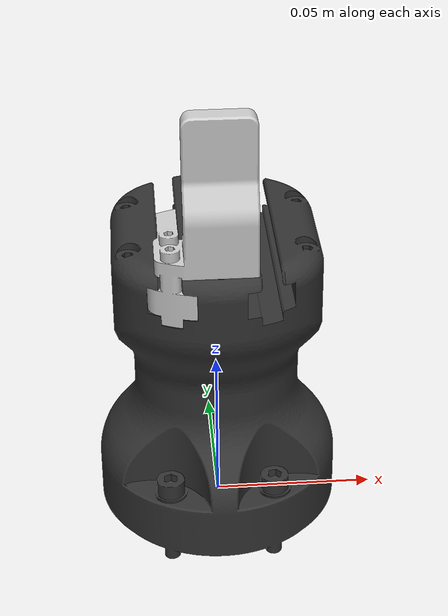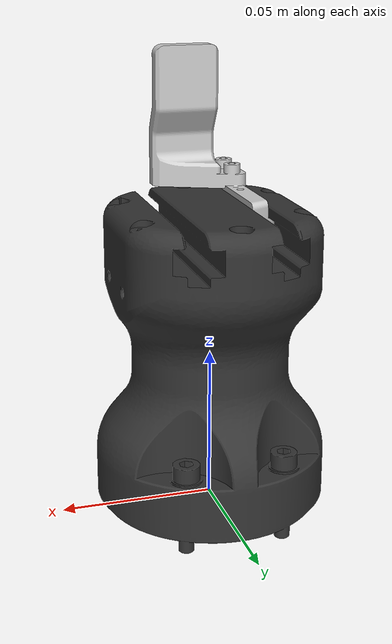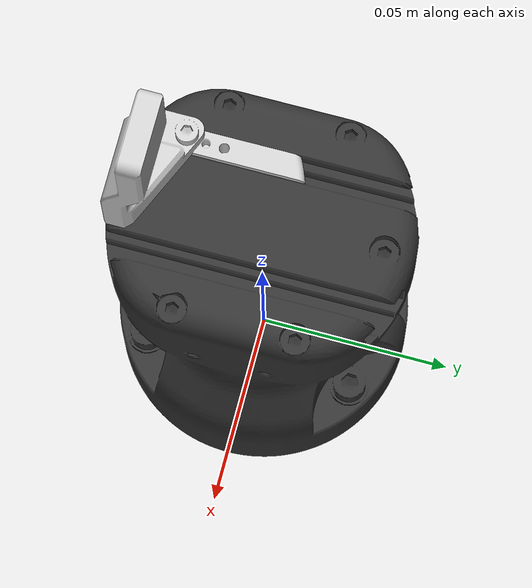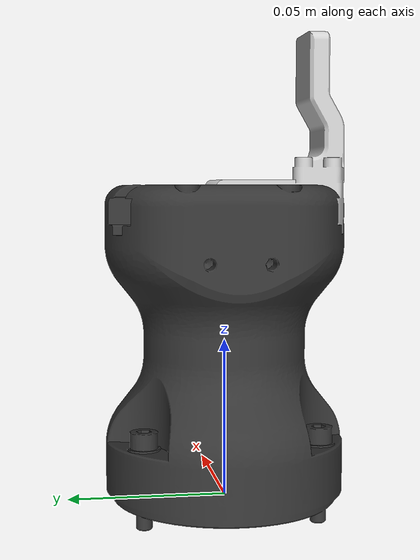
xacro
<?xml version="1.0"?>
<robot xmlns:xacro="http://ros.org/wiki/xacro" name="hande">

  <link name="world" />

  <link name="base_link">
    <inertial>
      <origin rpy="0 0 0" xyz="0 0 0.04607"/>
      <mass value="0.86387"/>
      <inertia ixx="1.22763e-05" iyy="1.22763e-05" izz="1.22763e-05" ixy="0.0" ixz="0.0" iyz="0.0" />
    </inertial>
    <visual>
      <origin rpy="0 0 0" xyz="0 0 0"/>
      <geometry>
        <mesh filename="package://hande_tutorials/meshes/visual/base_link.stl" scale="0.001 0.001 0.001"/>
      </geometry>
      <material name="">
        <color rgba="0.2 0.2 0.2 1" />
      </material>
    </visual>
    <collision>
      <origin rpy="0 0 0" xyz="0 0 0"/>
      <geometry>
        <mesh filename="package://hande_tutorials/meshes/collision/base_link.stl" scale="0.001 0.001 0.001"/>
      </geometry>
    </collision>
  </link>

  <joint name="world_fixed_joint" type="fixed">
    <origin xyz="0.0 0.0 0.0" rpy="0.0 0.0 0.0"/>
    <parent link="world"/>
    <child link="base_link"/>
  </joint>

  <link name="hande_left_finger">
    <inertial>
      <origin rpy="0 0 0" xyz="0.02262 -0.00759 0.00738"/>
      <mass value="0.03804"/>
      <inertia ixx="1.22763e-05" iyy="1.22763e-05" izz="1.22763e-05" ixy="0.0" ixz="0.0" iyz="0.0" />
    </inertial>
    <visual>
      <origin rpy="0 0 0" xyz="0 0 0"/>
      <geometry>
        <mesh filename="package://hande_tutorials/meshes/visual/left_finger.stl" scale="0.001 0.001 0.001"/>
      </geometry>
      <material name="">
        <color rgba="0.8 0.8 0.8 1" />
      </material>
    </visual>
    <collision>
      <origin rpy="0 0 0" xyz="0 0 0"/>
      <geometry>
        <mesh filename="package://hande_tutorials/meshes/collision/left_finger.stl" scale="0.001 0.001 0.001"/>
      </geometry>
    </collision>
  </link>

  <link name="hande_right_finger">
    <inertial>
      <origin rpy="0 0 0" xyz="-0.02262 0.00759 0.00738"/>
      <mass value="0.03804"/>
      <inertia ixx="1.22763e-05" iyy="1.22763e-05" izz="1.22763e-05" ixy="0.0" ixz="0.0" iyz="0.0" />
    </inertial>
    <visual>
      <origin rpy="0 0 0" xyz="0 0 0"/>
      <geometry>
        <mesh filename="package://hande_tutorials/meshes/visual/right_finger.stl" scale="0.001 0.001 0.001"/>
      </geometry>
      <material name="">
        <color rgba="0.8 0.8 0.8 1" />
      </material>
    </visual>
    <collision>
      <origin rpy="0 0 0" xyz="0 0 0"/>
      <geometry>
        <mesh filename="package://hande_tutorials/meshes/collision/right_finger.stl" scale="0.001 0.001 0.001"/>
      </geometry>
    </collision>
  </link>

  <joint name="hande_left_finger_joint" type="prismatic">
    <origin rpy="0 0 0" xyz="0 0 0"/>
    <parent link="base_link"/>
    <child link="hande_left_finger"/>
    <axis xyz="0 -1 0"/>
    <limit effort="130" lower="0" upper="0.025" velocity="0.15"/>
  </joint>

  <joint name="hande_right_finger_joint" type="prismatic">
    <origin rpy="0 0 0" xyz="0 0 0"/>
    <parent link="base_link"/>
    <child link="hande_right_finger"/>
    <axis xyz="0 1 0"/>
    <limit effort="130" lower="0" upper="0.025" velocity="0.15"/>
    <mimic joint="hande_left_finger_joint" multiplier="1" offset="0"/>
  </joint>

</robot>
